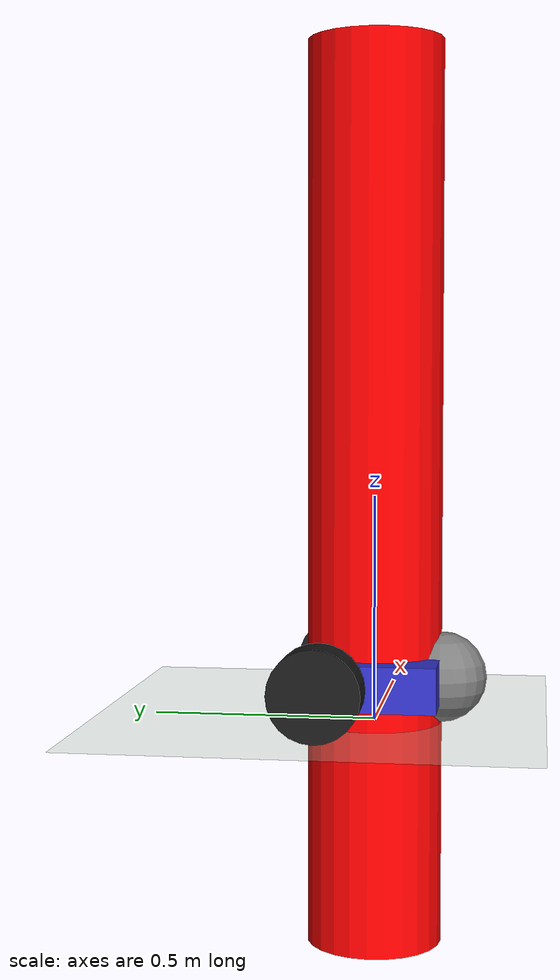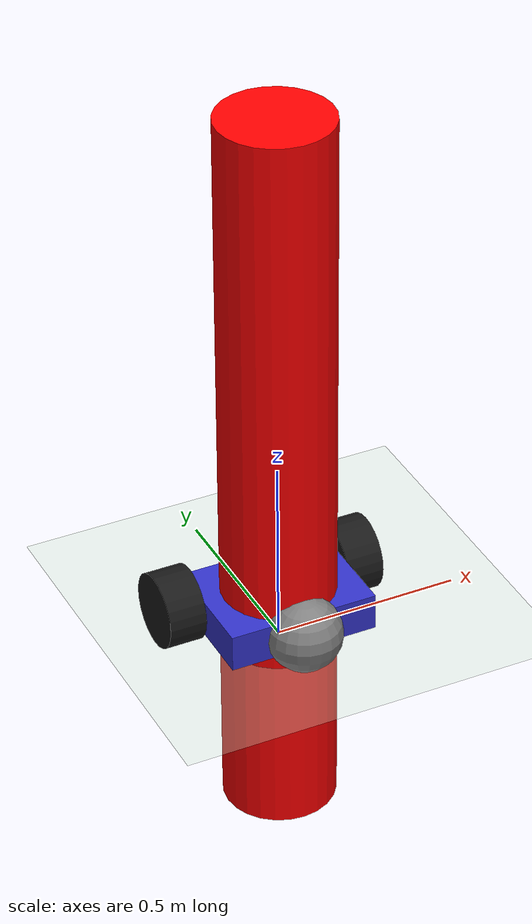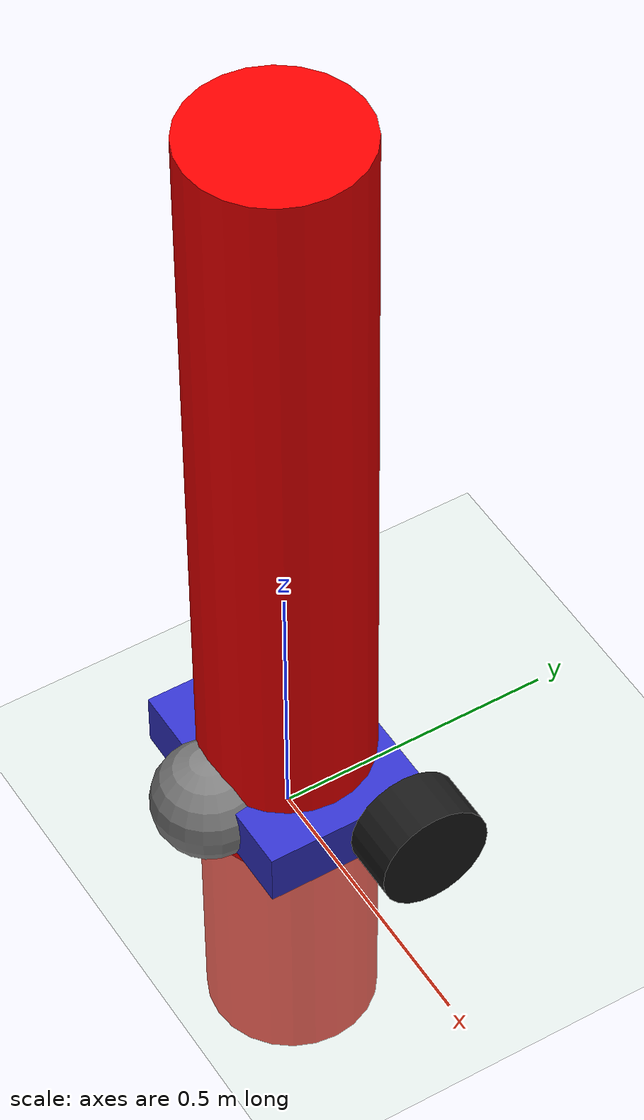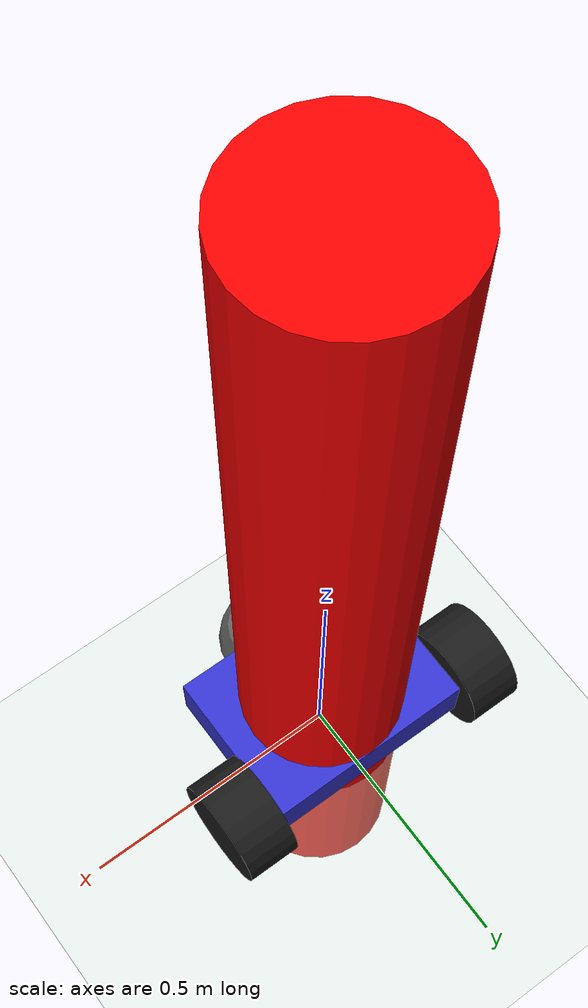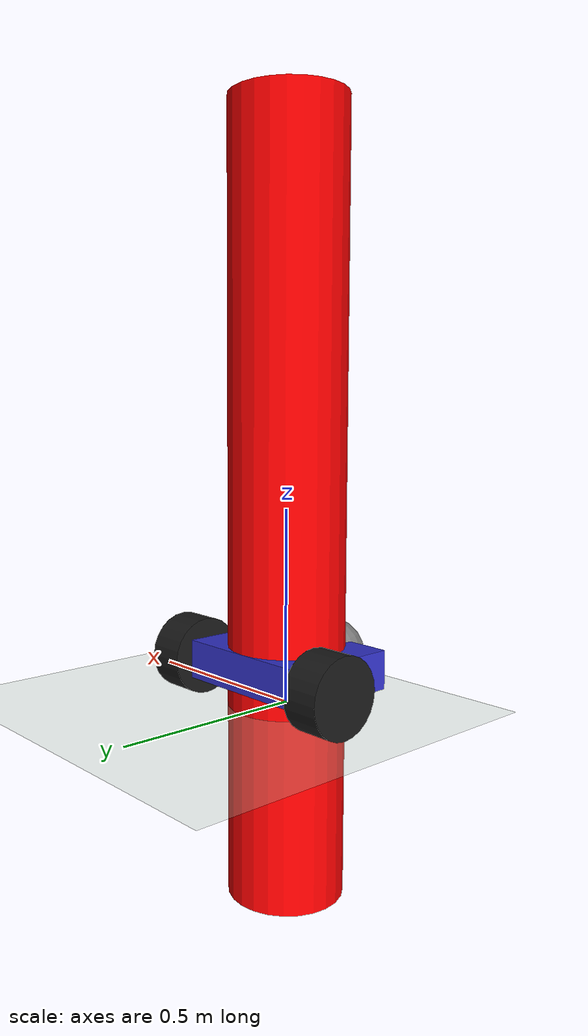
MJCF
<mujoco model="simple_mobile_robot">
  <option timestep="0.002" gravity="0 0 -9.81" integrator="RK4"/>

  <default>
    <joint armature="0.01" damping="0.5"/>
    <geom solref="0.02 1" friction="1.0 0.005 0.0001"/>
  </default>

  <visual>
    <headlight active="1"/>
    <map/>
  </visual>

  <worldbody>
    <geom name="floor" type="plane" size="5 5 0.1" rgba=".8 .9 .8 1"/>
    <light pos="2 2 5" dir="-0.5 -0.5 -1" diffuse="0.8 0.8 0.8"/>

    <camera name="global_cam" pos="0 -4 5" xyaxes="1 0 0 0 0.8 0.6" fovy="80"/>

    <body name="robot" pos="0 0 0.1">
      <joint type="free"/>

      <geom type="box" size="0.2 0.15 0.05" rgba="0.2 0.2 0.8 1" mass="5"/>

      <camera name="robot_cam" pos="0 -0.22 0.1" euler="90 180 0" fovy="90"/>

      <body name="wheel_right" pos="0.25 0.1 0">
        <joint name="joint_right" axis="1 0 0"/>
        <geom type="cylinder" size="0.1 0.05" euler="0 90 0" rgba="0.1 0.1 0.1 1"/>
      </body>

      <body name="wheel_left" pos="-0.25 0.1 0">
        <joint name="joint_left" axis="1 0 0"/>
        <geom type="cylinder" size="0.1 0.05" euler="0 90 0" rgba="0.1 0.1 0.1 1"/>
      </body>

      <geom name="caster" type="sphere" size="0.1" pos="0 -0.15 0" rgba="0.5 0.5 0.5 1" friction="0 0 0"/>
    </body>

    <!-- カラーポール（スライドジョイントで位置を変更可能） -->
    <body name="target_red" pos="0 0 0.5">
      <joint name="joint_target_red_x" type="slide" axis="1 0 0"/>
      <joint name="joint_target_red_y" type="slide" axis="0 1 0"/>
      <geom type="cylinder" size="0.15 1" rgba="1 0 0 1"/>
    </body>

    <body name="target_blue" pos="0 0 0.5">
      <joint name="joint_target_blue_x" type="slide" axis="1 0 0"/>
      <joint name="joint_target_blue_y" type="slide" axis="0 1 0"/>
      <geom type="cylinder" size="0.15 1" rgba="0 0 1 1"/>
    </body>

    <body name="target_yellow" pos="0 0 0.5">
      <joint name="joint_target_yellow_x" type="slide" axis="1 0 0"/>
      <joint name="joint_target_yellow_y" type="slide" axis="0 1 0"/>
      <geom type="cylinder" size="0.15 1" rgba="1 1 0 1"/>
    </body>
  </worldbody>

  <actuator>
    <velocity name="motor_right" joint="joint_right" kv="20"/>
    <velocity name="motor_left" joint="joint_left" kv="20"/>
  </actuator>

</mujoco>
